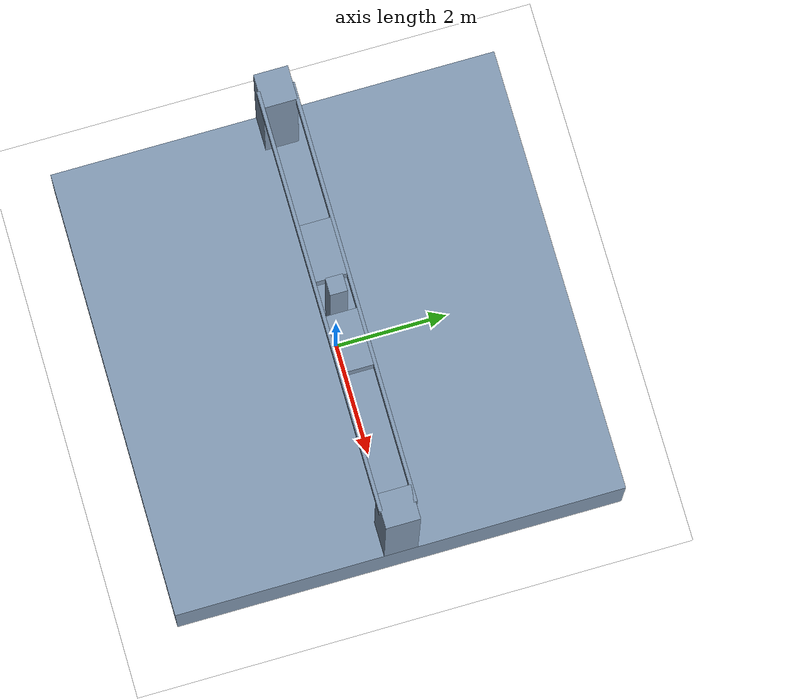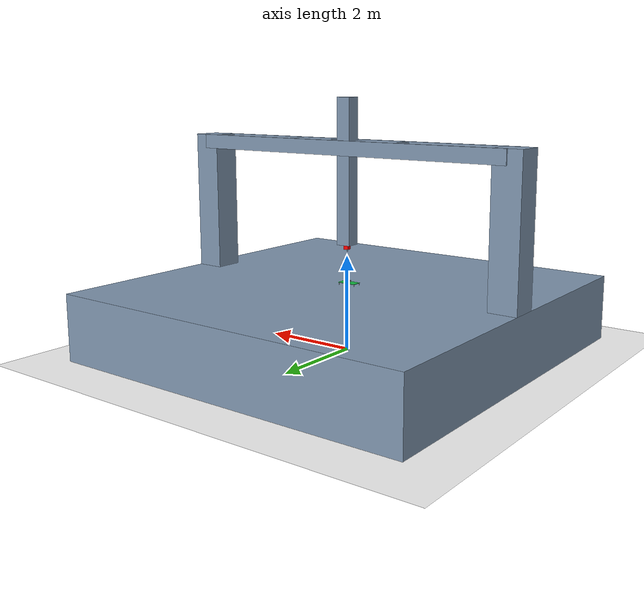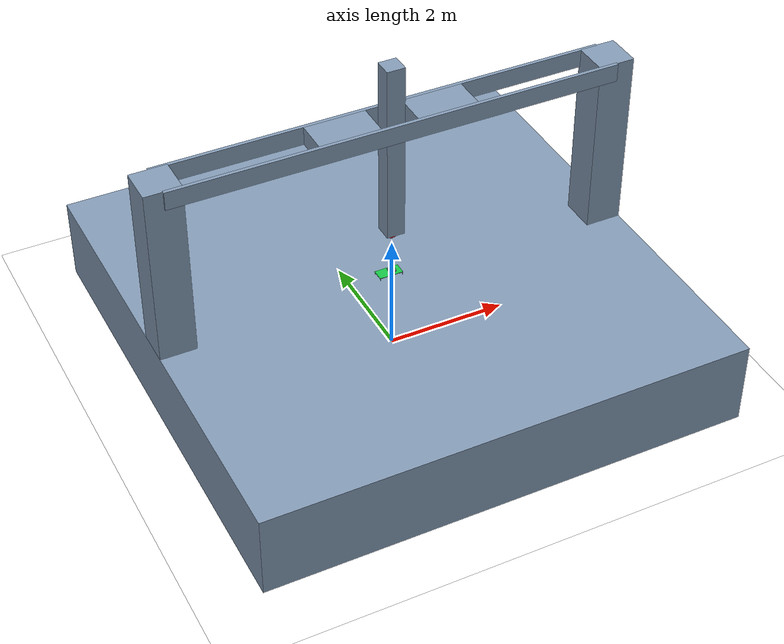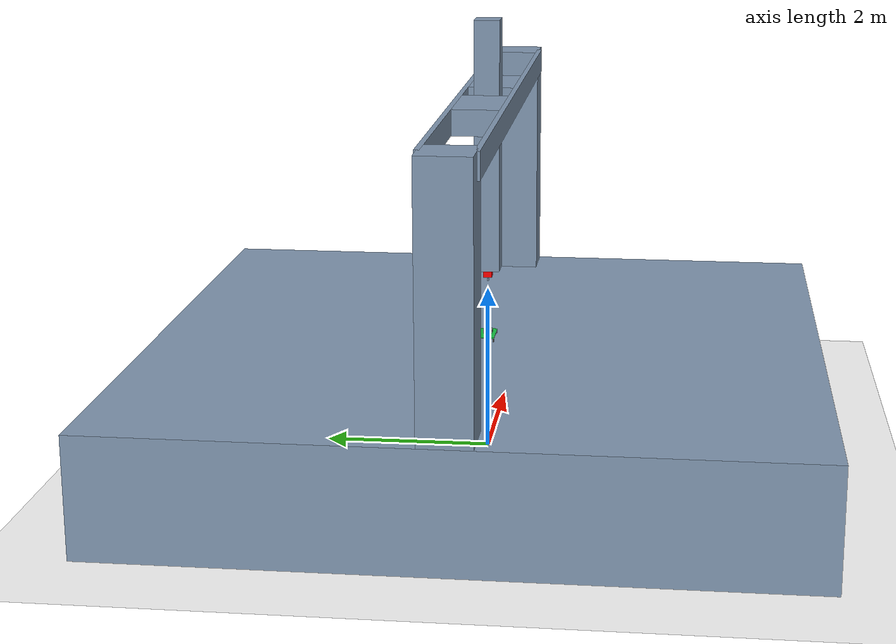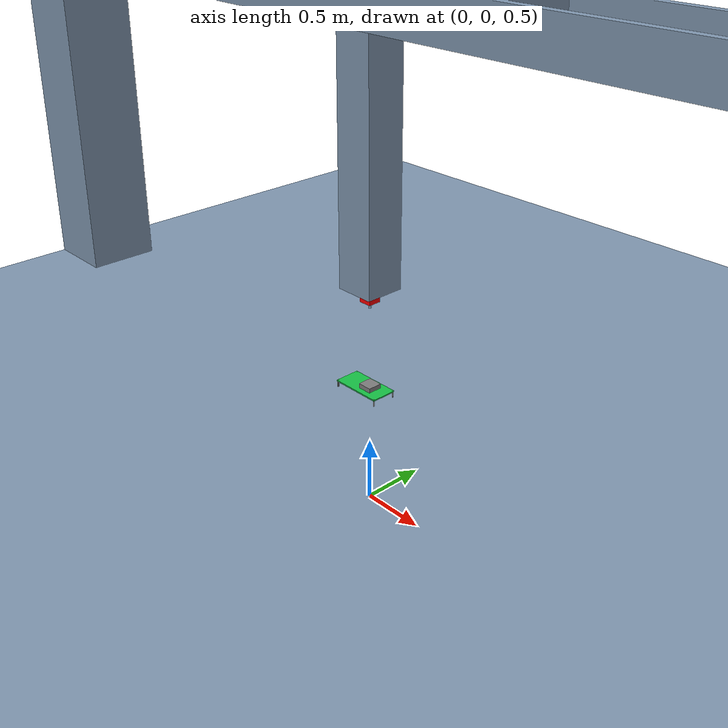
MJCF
<mujoco model="mocap measure">
    <option collision="all" timestep="0.001" gravity="0 0 -9.81" cone="elliptic" />
    <compiler angle="radian" />
    <statistic extent="1.5" meansize=".05"/>
    <option timestep="0.001" jacobian="sparse" gravity="0 0 -9.81"/>
    <size nconmax="3000" njmax="4000"/>
    <visual>
        <rgba haze="0.15 0.25 0.35 1"/>
        <quality shadowsize="4096"/>
        <map stiffness="700" shadowscale="0.5" fogstart="10" fogend="15" zfar="40" haze="0.3"/>
        <scale forcewidth="0.001" />
    </visual>

    <custom>
        <!-- All custom parameters related to contact surfaces have the prefix cs:: -->
        <!-- Options are traingles or plygons, though currently only triangles are supported -->
        <text name="cs::HydroelasticContactRepresentation" data="kTriangle"/>
        <!-- If this option is enabled, the contact surface will be rendered in sim -->
        <numeric name="cs::VisualizeSurfaces" data="1"/>
        <!-- If cs::ApplyContactSurfaceForces is 0 Contact Surfaces are only computed for tactile sensors and standard mujoco contacts are used to compute physics -->
        <numeric name="cs::ApplyContactSurfaceForces" data="1"/>
        <numeric name="cs::measure_tip" data="0 1.0 0.01 0.3 0.3"/>
        <numeric name="cs::baro_silicone" data="8e7 5.0 0 0.3 0.3"/>
    </custom>

    <default>
        <geom contype="1" conaffinity="1" group="1" type="mesh" rgba=".51 .6 .7 1" />
    </default>

    <visual>
        <headlight ambient="0.4 0.4 0.4" diffuse="0.4 0.4 0.4" specular="0.0 0.0 0.0" active="1" />
    </visual>

    <asset>
        <texture type="skybox" builtin="gradient" rgb1="0.6 0.6 0.6" rgb2="0 0 0" width="512" height="512" />
        <texture builtin="checker" height="512" name="texplane" rgb1=".2 .3 .4" rgb2=".1 .15 .2" type="2d" width="512" />
        <material name="MatPlane" reflectance="0.05" shininess="0.01" specular="0.01" texrepeat="1 1" texture="texplane" texuniform="true" />
    </asset>

    <worldbody>
        <light directional="true" diffuse=".4 .4 .4" specular="0.1 0.1 0.1" pos="0 0 5.0" dir="0 0 -1" castshadow="false"/>
        <light directional="true" diffuse=".6 .6 .6" specular="0.2 0.2 0.2" pos="0 0 4" dir="0 0 -1"/>
        <geom name="ground_plane" type="plane" size="5 5 10" material="MatPlane" rgba="1 1 1 1"/>
    </worldbody>

    <worldbody>
        <body name="HDTA_Table" >
            <geom name="slicer_base" type="box" pos="0 0 0.7" size="4 4 0.7" />

            <body name="body_baro" pos="-0.05 0 1.4">
                <geom name="leg00"  type="cylinder" pos="-0.1925 -0.0925 0.025" size="0.005 0.03" rgba="0.5 0.5 0.5 1"/>
                <geom name="leg01"  type="cylinder" pos="-0.1925 0.0925 0.025"  size="0.005 0.03" rgba="0.5 0.5 0.5 1"/>
                <geom name="leg10"  type="cylinder" pos="0.1925 -0.0925 0.025"  size="0.005 0.03" rgba="0.5 0.5 0.5 1"/>
                <geom name="leg11"  type="cylinder" pos="0.1925 0.0925 0.025"   size="0.005 0.03" rgba="0.5 0.5 0.5 1"/>

                <geom name="platine"         type="box" pos="0 0 0.05"  size="0.2 0.1 0.005" rgba="0.09 0.77 0.28 1" />
                <geom name="baro_silicone"     type="box" pos="0.05 0 0.07"  size="0.055 0.055 0.02" rgba="0.5 0.5 0.5 1"/>
                <geom name="baro_silicone_alt" type="box" pos="0.05 0 0.07"  size="0.055 0.055 0.02" rgba="0.5 0.5 0.5 1" contype="2" conaffinity="2" />
            </body>

            <body name="tower" pos="0 0 1.4" >
                <joint name="y-Axis" pos="-3.7 0 2" type="slide" axis="0 1 0" stiffness="0" damping="1000" limited="true" range="-3.7 3.7" />
                <geom type="box" size="0.3 0.3 1.5" pos="3.7 0.0 1.5"/>
                <geom type="box" size="0.3 0.3 1.5" pos="-3.7 0.0 1.5" />

                <geom type="box" size="3.7 0.03 0.15" pos="0.0 0.3 2.85" />
                <geom type="box" size="3.7 0.03 0.15" pos="0.0 -0.3 2.85" />

                <body pos="0 0 2.85" >
                    <joint name="x-Axis" type="slide" pos="0. 0. 1" axis="1 0 0" stiffness="0" damping="1000" limited="true" range="-2.1 2.1" />
                    <geom name="bridge_r" type="box" size="0.5 0.27 0.15" pos="0.8 0.0 0.0" />
                    <geom name="bridge_l" type="box" size="0.5 0.27 0.15" pos="-0.8 0.0 0.0" />

                    <body pos="0 0 -0.5">
                        <joint name="z-Axis" type="slide" pos="0. 0. 1" axis="0 0 1" stiffness="0" damping="1000" limited="true" range="-1.67 0.0" />
                        <geom name="x-staff" type="box" size="0.15 0.15 1.5" pos="0.0 0.0 0" />

                        <body name="measure_body" pos="0. 0. -1.55">
                            <geom type="cylinder" size=".0375 .056" rgba=".5 .5 .5 1" />
                            <body name="measure_tip_body" pos="0 0 -0.04085">
                                <geom name="measure_tip" type="cylinder" size=".0125 .056"/>
                                <site name="measure_tip_site" type="cylinder" size="0.0125 0.056" pos="0 0 -0" group="0" />
                            </body>
                        </body>
                    </body>
                </body>
            </body>
        </body>

        <body name="mocap" mocap="true" pos="0. 0.0 2.2">
            <geom type="box" size="0.05 0.05 0.05" rgba="1.0 0 0 1." contype="0" conaffinity="0" />
            <site name="mocap_site" type="box" size="0.25 0.25 0.25" rgba="1.0 0 0 0" group="0" />
        </body>

    </worldbody>

    <equality>
        <weld body1="mocap" body2="measure_body" active="true" solref="0.1 1" solimp=".3 .4 0.01"/>
    </equality>

    <sensor>
        <framepos name="pos" objtype="site" objname="mocap_site" />
        <framepos name="measure_b" objtype="body" objname="measure_body" />
    </sensor>

</mujoco>
